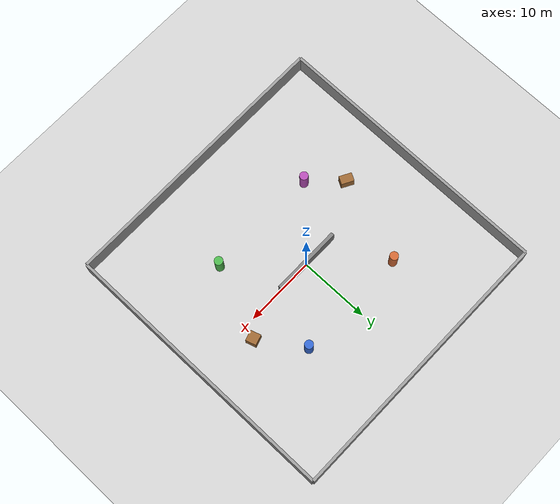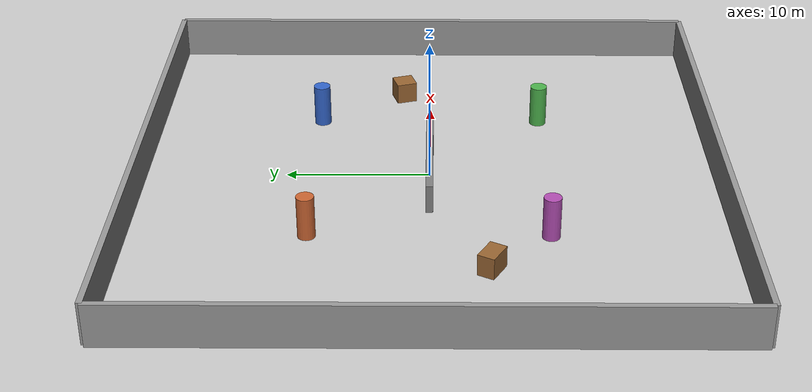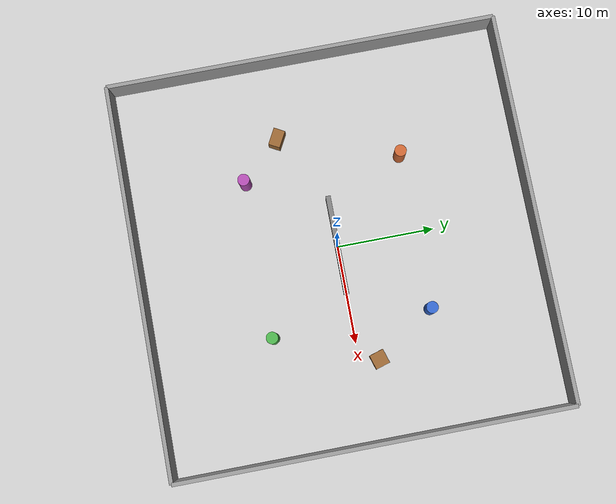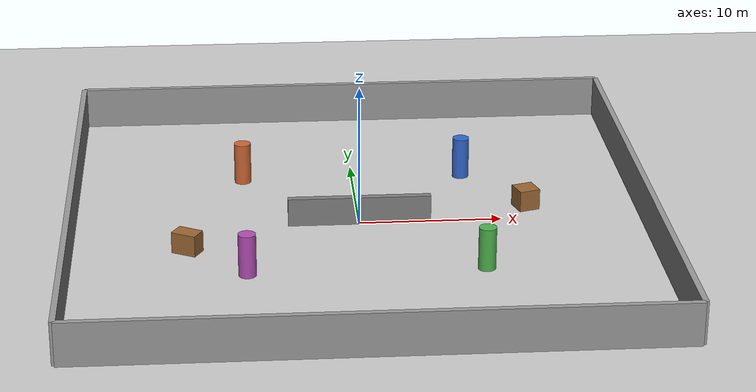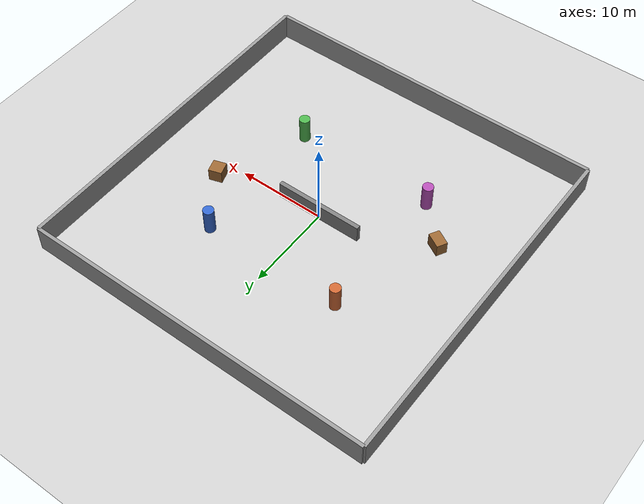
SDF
<?xml version="1.0" ?>
<sdf version="1.6">
  <world name="gps_denied_warehouse">

    <!-- Physics Engine Configuration -->
    <physics name="default_physics" default="0" type="ode">
      <max_step_size>0.001</max_step_size>
      <real_time_factor>1</real_time_factor>
      <real_time_update_rate>1000</real_time_update_rate>
    </physics>

    <!-- Sun / Ambient Dim Lighting (Simulating Enclosed Facility) -->
    <include>
      <uri>model://sun</uri>
    </include>

    <!-- Ground Plane -->
    <include>
      <uri>model://ground_plane</uri>
    </include>

    <!-- Enclosing Outer Boundary Walls (40m x 40m) -->
    <!-- North Wall -->
    <model name="wall_north">
      <static>true</static>
      <pose>0 20 1.5 0 0 0</pose>
      <link name="link">
        <collision name="collision">
          <geometry><box><size>40 0.4 3.0</size></box></geometry>
        </collision>
        <visual name="visual">
          <geometry><box><size>40 0.4 3.0</size></box></geometry>
          <material><ambient>0.6 0.6 0.6 1</ambient></material>
        </visual>
      </link>
    </model>

    <!-- South Wall -->
    <model name="wall_south">
      <static>true</static>
      <pose>0 -20 1.5 0 0 0</pose>
      <link name="link">
        <collision name="collision">
          <geometry><box><size>40 0.4 3.0</size></box></geometry>
        </collision>
        <visual name="visual">
          <geometry><box><size>40 0.4 3.0</size></box></geometry>
          <material><ambient>0.6 0.6 0.6 1</ambient></material>
        </visual>
      </link>
    </model>

    <!-- East Wall -->
    <model name="wall_east">
      <static>true</static>
      <pose>20 0 1.5 0 0 0</pose>
      <link name="link">
        <collision name="collision">
          <geometry><box><size>0.4 40 3.0</size></box></geometry>
        </collision>
        <visual name="visual">
          <geometry><box><size>0.4 40 3.0</size></box></geometry>
          <material><ambient>0.6 0.6 0.6 1</ambient></material>
        </visual>
      </link>
    </model>

    <!-- West Wall -->
    <model name="wall_west">
      <static>true</static>
      <pose>-20 0 1.5 0 0 0</pose>
      <link name="link">
        <collision name="collision">
          <geometry><box><size>0.4 40 3.0</size></box></geometry>
        </collision>
        <visual name="visual">
          <geometry><box><size>0.4 40 3.0</size></box></geometry>
          <material><ambient>0.6 0.6 0.6 1</ambient></material>
        </visual>
      </link>
    </model>

    <!-- Interior Structural Pillars / Visual Features for VSLAM -->
    <model name="pillar_1">
      <static>true</static>
      <pose>8 8 1.5 0 0 0</pose>
      <link name="link">
        <collision name="col"><geometry><cylinder><radius>0.6</radius><length>3.0</length></cylinder></geometry></collision>
        <visual name="vis">
          <geometry><cylinder><radius>0.6</radius><length>3.0</length></cylinder></geometry>
          <material><ambient>0.2 0.4 0.8 1</ambient></material>
        </visual>
      </link>
    </model>

    <model name="pillar_2">
      <static>true</static>
      <pose>-8 8 1.5 0 0 0</pose>
      <link name="link">
        <collision name="col"><geometry><cylinder><radius>0.6</radius><length>3.0</length></cylinder></geometry></collision>
        <visual name="vis">
          <geometry><cylinder><radius>0.6</radius><length>3.0</length></cylinder></geometry>
          <material><ambient>0.8 0.4 0.2 1</ambient></material>
        </visual>
      </link>
    </model>

    <model name="pillar_3">
      <static>true</static>
      <pose>8 -8 1.5 0 0 0</pose>
      <link name="link">
        <collision name="col"><geometry><cylinder><radius>0.6</radius><length>3.0</length></cylinder></geometry></collision>
        <visual name="vis">
          <geometry><cylinder><radius>0.6</radius><length>3.0</length></cylinder></geometry>
          <material><ambient>0.3 0.7 0.3 1</ambient></material>
        </visual>
      </link>
    </model>

    <model name="pillar_4">
      <static>true</static>
      <pose>-8 -8 1.5 0 0 0</pose>
      <link name="link">
        <collision name="col"><geometry><cylinder><radius>0.6</radius><length>3.0</length></cylinder></geometry></collision>
        <visual name="vis">
          <geometry><cylinder><radius>0.6</radius><length>3.0</length></cylinder></geometry>
          <material><ambient>0.7 0.3 0.7 1</ambient></material>
        </visual>
      </link>
    </model>

    <!-- Corridor Partition Partitions -->
    <model name="partition_center">
      <static>true</static>
      <pose>0 0 1.0 0 0 0</pose>
      <link name="link">
        <collision name="col"><geometry><box><size>10 0.5 2.0</size></box></geometry></collision>
        <visual name="vis">
          <geometry><box><size>10 0.5 2.0</size></box></geometry>
          <material><ambient>0.5 0.5 0.5 1</ambient></material>
        </visual>
      </link>
    </model>

    <!-- Barrels / Crate Obstacles -->
    <model name="crate_stack_1">
      <static>true</static>
      <pose>12 2 0.75 0 0 0.3</pose>
      <link name="link">
        <collision name="col"><geometry><box><size>1.5 1.5 1.5</size></box></geometry></collision>
        <visual name="vis">
          <geometry><box><size>1.5 1.5 1.5</size></box></geometry>
          <material><ambient>0.6 0.4 0.2 1</ambient></material>
        </visual>
      </link>
    </model>

    <model name="crate_stack_2">
      <static>true</static>
      <pose>-12 -4 0.75 0 0 -0.5</pose>
      <link name="link">
        <collision name="col"><geometry><box><size>1.8 1.2 1.5</size></box></geometry></collision>
        <visual name="vis">
          <geometry><box><size>1.8 1.2 1.5</size></box></geometry>
          <material><ambient>0.6 0.4 0.2 1</ambient></material>
        </visual>
      </link>
    </model>

  </world>
</sdf>
